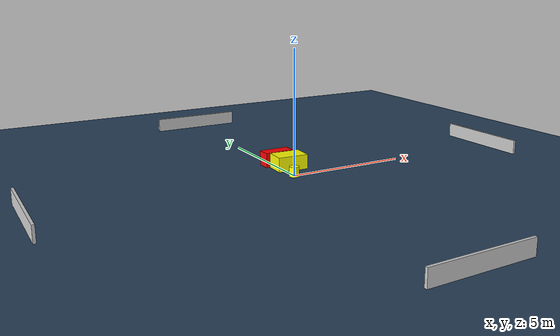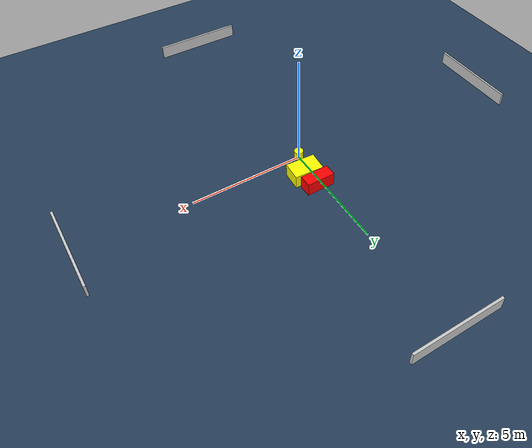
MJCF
<?xml version="1.0" ?>
<mujoco model="generated_environment">
  <option timestep="0.01" integrator="RK4" cone="elliptic"/>
  <default>
    <geom density="1"/>
  </default>
  <asset>
    <texture builtin="gradient" height="3072" name="skybox" rgb1="0.3 0.5 0.7" rgb2="0 0 0" type="skybox" width="512"/>
    <texture builtin="checker" height="300" name="groundplane" rgb1="0.2 0.3 0.4" rgb2="0.1 0.2 0.3" type="2d" width="300"/>
    <material name="groundplane" reflectance="0.2" texrepeat="5 5" texture="groundplane"/>
  </asset>
  <worldbody>
    <light dir="0 0 -1" directional="true" pos="0 0 1.5"/>
    <geom condim="3" friction="0.5 0.005 0.001" material="groundplane" name="floor" pos="0 0 0" size="0 0 0.05" type="plane"/>
    <body name="walls">
      <geom name="wall_1" condim="4" pos="-10.0 0.0 0.3" rgba="0.800000011920929 0.800000011920929 0.800000011920929 1.0" size="0.05 2.0 0.3" type="box"/>
      <geom name="wall_2" condim="4" pos="10.0 0.0 0.3" rgba="0.800000011920929 0.800000011920929 0.800000011920929 1.0" size="0.05 2.0 0.3" type="box"/>
      <geom name="wall_3" condim="4" pos="0.0 -10.0 0.3" rgba="0.800000011920929 0.800000011920929 0.800000011920929 1.0" size="2.0 0.05 0.3" type="box"/>
      <geom name="wall_4" condim="4" pos="0.0 10.0 0.3" rgba="0.800000011920929 0.800000011920929 0.800000011920929 1.0" size="2.0 0.05 0.3" type="box"/>
    </body>
    <body name="robot">
      <joint name="joint_x" type="slide" pos="0 0 0" axis="1 0 0"/>
      <joint name="joint_y" type="slide" pos="0 0 0" axis="0 1 0"/>
      <geom name="robot" type="cylinder" pos="0.0 0.0 0.2" size="0.2 0.2 0.0" mass="5.0" friction="1.0 0.005 0.0001" condim="4" rgba="1.0 1.0 0.0 1.0"/>
    </body>
    <body name="obstacle_1_movable">
      <geom name="obstacle_1_movable" condim="4" pos="0.3814938052405455 1.0822878774994913 0.3" euler="0 0 86.59004418822995" friction="0.0 0.005 0.001" rgba="1.0 1.0 0.0 1.0" size="0.4221612111761419 0.6401896185821436 0.3" type="box" mass="0.1"/>
      <joint type="free"/>
    </body>
    <body name="obstacle_2_static">
      <geom name="obstacle_2_static" condim="4" pos="0.22429645302265125 1.8223348761808 0.3" euler="0 0 180.10060889759603" friction="0.0 0.005 0.001" rgba="1.0 0.0 0.0 1.0" size="0.6209735744564235 0.2730539198236423 0.3" type="box"/>
    </body>
  </worldbody>
  <actuator>
    <motor name="actuator_x" joint="joint_x" gear="1" ctrlrange="-1 1"/>
    <motor name="actuator_y" joint="joint_y" gear="1" ctrlrange="-1 1"/>
  </actuator>
</mujoco>
